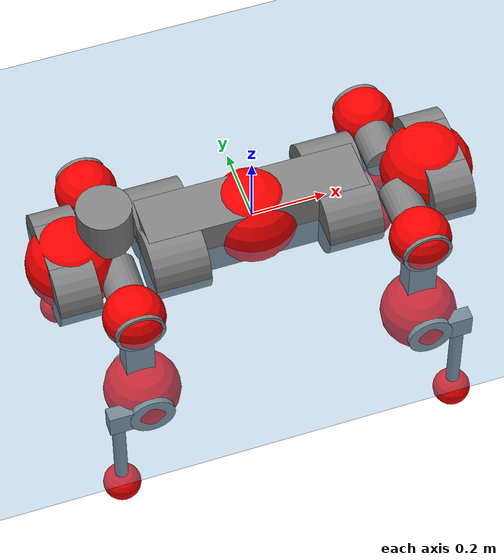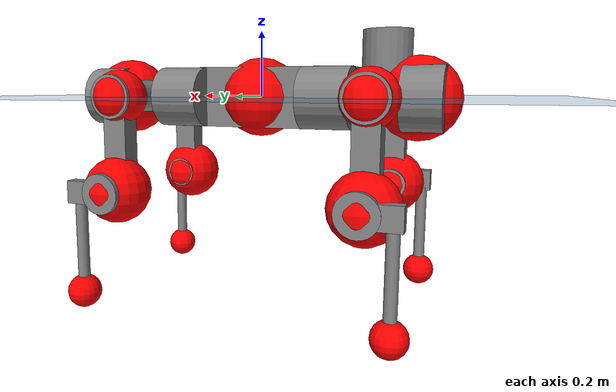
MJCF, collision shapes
<mujoco model="anymal_c">
  <compiler angle="radian" assetdir="assets" balanceinertia="true" inertiafromgeom="false"/>

  <option timestep="0.005" density="1.2" viscosity="2e-05"/>

  <size nkey="1"/>

  <visual>
    <quality shadowsize="8192"/>
    <map shadowclip="0.5"/>
  </visual>

  <default>
    <default class="/">
      <material specular="0" shininess="0.25"/>
      <geom contype="0" conaffinity="0" group="1" solref="-1000 -80"/>
      <site size="0.01 0.005 0.005" group="5"/>
      <general forcelimited="true" forcerange="-80 80" biastype="affine" gainprm="80" biasprm="0 -80 -2"/>
      <default class="anymal_c">
        <joint armature="0.01" damping="0.01" frictionloss="0.1"/>
        <default class="visual">
          <geom type="mesh" group="2"/>
          <default class="visual_zflip"/>
        </default>
        <default class="collision">
          <geom type="cylinder" group="3"/>
          <default class="foot">
            <geom size="0.03 0 0" type="sphere" condim="6" priority="1" friction="0.8 0.02 0.01" solimp="0.015 1 0.03"/>
          </default>
        </default>
      </default>
      <default class="reward_collision_sphere">
        <geom group="5" rgba="1 0 0 1"/>
      </default>
    </default>
  </default>

  <asset>
    <texture type="skybox" colorspace="auto" name="//unnamed_texture_0" builtin="gradient" rgb1="0.95 0.95 0.95" rgb2="0.95 0.95 0.95" width="100" height="600"/>
    <texture type="2d" colorspace="auto" name="texplane" builtin="checker" rgb1="0.345 0.575 0.748" rgb2="0.345 0.575 0.748" markrgb="1 1 1" width="512" height="512"/>
    <texture type="2d" colorspace="linear" name="base" file="base.png"/>
    <texture type="2d" colorspace="linear" name="top_shell" file="top_shell.png"/>
    <texture type="2d" colorspace="linear" name="bottom_shell" file="bottom_shell.png"/>
    <texture type="2d" colorspace="linear" name="remote" file="remote.png"/>
    <texture type="2d" colorspace="linear" name="hatch" file="hatch.png"/>
    <texture type="2d" colorspace="linear" name="handle" file="handle.png"/>
    <texture type="2d" colorspace="linear" name="face" file="face.png"/>
    <texture type="2d" colorspace="linear" name="battery" file="battery.png"/>
    <texture type="2d" colorspace="linear" name="lidar_cage" file="lidar_cage.png"/>
    <texture type="2d" colorspace="linear" name="depth_camera" file="depth_camera.png"/>
    <texture type="2d" colorspace="linear" name="wide_angle_camera" file="wide_angle_camera.png"/>
    <texture type="2d" colorspace="linear" name="lidar" file="lidar.png"/>
    <texture type="2d" colorspace="linear" name="drive" file="drive.png"/>
    <texture type="2d" colorspace="linear" name="hip_l" file="hip_l.png"/>
    <texture type="2d" colorspace="linear" name="shank_l" file="shank_l.png"/>
    <texture type="2d" colorspace="linear" name="foot" file="foot.png"/>
    <texture type="2d" colorspace="linear" name="thigh" file="thigh.png"/>
    <texture type="2d" colorspace="linear" name="shank_r" file="shank_r.png"/>
    <texture type="2d" colorspace="linear" name="hip_r" file="hip_r.png"/>
    <material name="MatPlane" class="/" texture="texplane" texuniform="true" texrepeat="2 2" specular="0.9" shininess="0.5"/>
    <material name="black_plastic" class="/" rgba="0.007 0.007 0.007 1"/>
    <material name="green" class="/" rgba="0.052 0.178 0.033 1"/>
    <material name="red" class="/" rgba="0.178 0.006 0.005 1"/>
    <material name="yellow" class="/" rgba="0.178 0.119 0.006 1"/>
    <material name="lwl" class="/" rgba="0.8 0.8 0.8 1"/>
    <material name="base" class="/" texture="base"/>
    <material name="top_shell" class="/" texture="top_shell"/>
    <material name="bottom_shell" class="/" texture="bottom_shell"/>
    <material name="hip_l" class="/" texture="hip_l"/>
    <material name="thigh" class="/" texture="thigh"/>
    <material name="shank_l" class="/" texture="shank_l"/>
    <material name="foot" class="/" texture="foot"/>
    <material name="hip_r" class="/" texture="hip_r"/>
    <material name="shank" class="/" texture="shank_r"/>
    <material name="hatch" class="/" texture="hatch"/>
    <material name="remote" class="/" texture="remote"/>
    <material name="handle" class="/" texture="handle"/>
    <material name="face" class="/" texture="face"/>
    <material name="depth_camera" class="/" texture="depth_camera"/>
    <material name="wide_angle_camera" class="/" texture="wide_angle_camera"/>
    <material name="battery" class="/" texture="battery"/>
    <material name="lidar_cage" class="/" texture="lidar_cage"/>
    <material name="lidar" class="/" texture="lidar"/>
    <material name="drive" class="/" texture="drive"/>
    <mesh name="base_0" class="/" file="base_0.obj"/>
    <mesh name="base_1" class="/" file="base_1.obj"/>
    <mesh name="base_2" class="/" file="base_2.obj"/>
    <mesh name="base_3" class="/" file="base_3.obj"/>
    <mesh name="base_4" class="/" file="base_4.obj"/>
    <mesh name="base_5" class="/" file="base_5.obj"/>
    <mesh name="top_shell" class="/" file="top_shell.obj"/>
    <mesh name="bottom_shell" class="/" file="bottom_shell.obj"/>
    <mesh name="remote" class="/" file="remote.obj"/>
    <mesh name="handle" class="/" file="handle.obj"/>
    <mesh name="face" class="/" file="face.obj"/>
    <mesh name="wide_angle_camera" class="/" file="wide_angle_camera.obj"/>
    <mesh name="depth_camera" class="/" file="depth_camera.obj"/>
    <mesh name="battery" class="/" file="battery.obj"/>
    <mesh name="lidar_cage" class="/" file="lidar_cage.obj"/>
    <mesh name="lidar" class="/" file="lidar.obj"/>
    <mesh name="drive" class="/" file="drive.obj"/>
    <mesh name="hip_l" class="/" file="hip_l.obj"/>
    <mesh name="thigh" class="/" file="thigh.obj"/>
    <mesh name="shank_l" class="/" file="shank_l.obj"/>
    <mesh name="foot" class="/" file="foot.obj"/>
    <mesh name="hip_r" class="/" file="hip_r.obj"/>
    <mesh name="hatch" class="/" file="hatch.obj"/>
    <mesh name="shank_r" class="/" file="shank_r.obj"/>
  </asset>

  <worldbody>
    <geom name="floor" class="/" size="100 100 0.125" type="plane" group="0" material="MatPlane"/>
    <light name="toplight_shadow" class="/" pos="0 0 5" dir="0.0990148 0.0990148 -0.990148" type="directional" ambient="0.04 0.04 0.04" diffuse="0.55 0.55 0.55" specular="0.12 0.12 0.12"/>
    <light name="toplight_fill" class="/" pos="0 0 5" dir="0.0990148 0.0990148 -0.990148" type="directional" castshadow="false" ambient="0.04 0.04 0.04" diffuse="0.3 0.3 0.3" specular="0.08 0.08 0.08"/>
    <body name="trunk" childclass="anymal_c" pos="-0.000695933 -0.000209131 -0.00265202" quat="0.999999 0.000827857 -0.00102125 0.000373634">
      <inertial pos="0.00278456 0.00241493 0.048571" quat="0.501554 0.507147 0.502477 0.488632" mass="20.3817" diaginertia="0.93357 0.634093 0.222047"/>
      <joint name="//unnamed_joint_0" type="free" armature="0" damping="0" frictionloss="0"/>
      <geom name="//unnamed_geom_1" class="visual" material="green" mesh="base_0"/>
      <geom name="//unnamed_geom_2" class="visual" material="yellow" mesh="base_1"/>
      <geom name="//unnamed_geom_3" class="visual" material="red" mesh="base_2"/>
      <geom name="//unnamed_geom_4" class="visual" material="black_plastic" mesh="base_3"/>
      <geom name="//unnamed_geom_5" class="visual" material="lwl" mesh="base_4"/>
      <geom name="//unnamed_geom_6" class="visual" material="base" mesh="base_5"/>
      <geom name="trunk_1" class="collision" size="0.295947 0.0714356 0.0918458" type="box"/>
      <geom name="trunk_2" class="collision" size="0.0918458 0.0739869" pos="0.232734 0.0696139 0" quat="0.707107 0 0.707107 0"/>
      <geom name="trunk_3" class="collision" size="0.0918458 0.0739869" pos="-0.232734 0.0696139 0" quat="0.707107 0 0.707107 0"/>
      <geom name="trunk_4" class="collision" size="0.0918458 0.0739869" pos="0.232734 -0.0696139 0" quat="0.707107 0 0.707107 0"/>
      <geom name="trunk_5" class="collision" size="0.0918458 0.0739869" pos="-0.232734 -0.0696139 0" quat="0.707107 0 0.707107 0"/>
      <geom name="//unnamed_geom_12" class="visual" material="top_shell" mesh="top_shell"/>
      <geom name="//unnamed_geom_13" class="visual" material="bottom_shell" mesh="bottom_shell"/>
      <geom name="//unnamed_geom_14" class="visual" material="remote" mesh="remote"/>
      <geom name="//unnamed_geom_15" class="visual" material="handle" mesh="handle"/>
      <geom name="//unnamed_geom_16" class="visual" pos="0.443531 0 0" quat="1 0 0 0" material="face" mesh="face"/>
      <geom name="trunk_6" class="collision" size="0.056128 0.0714356 0.0918458" pos="0.502383 0 0" type="box"/>
      <geom name="//unnamed_geom_18" class="collision" size="0.0918458 0.056128" pos="0.502383 0.0696139 0" quat="0.707107 0 0.707107 0"/>
      <geom name="//unnamed_geom_19" class="collision" size="0.0918458 0.056128" pos="0.502383 -0.0696139 0" quat="0.707107 0 0.707107 0"/>
      <geom name="//unnamed_geom_20" class="visual" pos="0.493981 0 -0.0285574" quat="0.965926 0 0.258819 0" material="depth_camera" mesh="depth_camera"/>
      <geom name="//unnamed_geom_21" class="visual" pos="0.54893 0 0.0149251" material="wide_angle_camera" mesh="wide_angle_camera"/>
      <geom name="//unnamed_geom_22" class="visual_zflip" pos="-0.443531 0 0" quat="0 0 0 1" material="face" mesh="face"/>
      <geom name="trunk_7" class="collision" size="0.056128 0.0714356 0.0918458" pos="-0.502383 0 0" quat="0 0 0 1" type="box"/>
      <geom name="//unnamed_geom_24" class="collision" size="0.0918458 0.056128" pos="-0.502383 -0.0696139 0" quat="0 -0.707107 0 0.707107"/>
      <geom name="//unnamed_geom_25" class="collision" size="0.0918458 0.056128" pos="-0.502383 0.0696139 0" quat="0 -0.707107 0 0.707107"/>
      <geom name="//unnamed_geom_26" class="visual" pos="-0.493981 0 -0.0285574" quat="0 -0.258819 0 0.965926" material="depth_camera" mesh="depth_camera"/>
      <geom name="//unnamed_geom_27" class="visual_zflip" pos="-0.54893 0 0.0149251" quat="0 0 0 1" material="wide_angle_camera" mesh="wide_angle_camera"/>
      <geom name="//unnamed_geom_28" class="visual" material="battery" mesh="battery"/>
      <geom name="//unnamed_geom_29" class="visual" pos="0 0.0750438 0.029518" quat="0.683013 -0.183013 0.183013 0.683013" material="depth_camera" mesh="depth_camera"/>
      <geom name="//unnamed_geom_30" class="visual" pos="0 -0.0750438 0.029518" quat="0.683013 0.183013 0.183013 -0.683013" material="depth_camera" mesh="depth_camera"/>
      <geom name="//unnamed_geom_31" class="visual" pos="-0.389494 0 0.0732796" quat="1 0 0 0" material="lidar_cage" mesh="lidar_cage"/>
      <geom name="trunk_8" class="collision" size="0.0714356 0.0612305" pos="-0.389494 0 0.1331"/>
      <geom name="//unnamed_geom_33" class="visual" pos="-0.389494 -2.96836e-05 0.141774" quat="0.707107 0 0 -0.707107" material="lidar" mesh="lidar"/>
      <geom name="//unnamed_geom_34" class="visual" pos="0.320905 0.103427 -4.34266e-11" quat="0.258819 0.965926 0 0" material="drive" mesh="drive"/>
      <geom name="//unnamed_geom_35" class="visual" pos="0.320905 -0.103427 4.34266e-11" quat="0.258819 -0.965926 0 0" material="drive" mesh="drive"/>
      <geom name="//unnamed_geom_36" class="visual" pos="-0.320905 0.103427 4.34266e-11" quat="0 0 0.965926 -0.258819" material="drive" mesh="drive"/>
      <geom name="//unnamed_geom_37" class="visual" pos="-0.320905 -0.103427 -4.34266e-11" quat="0 0 -0.965926 -0.258819" material="drive" mesh="drive"/>
      <geom name="//unnamed_geom_38" class="visual" pos="0.124125 0 0.0727811" quat="1 0 0 0" material="hatch" mesh="hatch"/>
      <geom name="//unnamed_geom_39" class="reward_collision_sphere" size="0.122461"/>
      <geom name="//unnamed_geom_40" class="reward_collision_sphere" size="0.122461" pos="0.481518 0 0"/>
      <geom name="//unnamed_geom_41" class="reward_collision_sphere" size="0.122461" pos="-0.481518 0 0"/>
      <site name="imu" pos="0.260895 0.0155338 0.0338381" size="0.0102051"/>
      <camera name="track" pos="0 -1.98897 0" quat="0.707107 0.707107 0 0" mode="trackcom"/>
      <camera name="ego_camera" pos="0.481518 0 -0.0398801" quat="-0.5 -0.5 0.5 0.5"/>
      <body name="LF_HIP" pos="0.321664 0.103912 0.00214464" quat="0.258763 0.965941 -3.99904e-05 -6.48538e-05">
        <inertial pos="0.0579579 -0.0148486 -0.0107053" quat="-0.117125 0.708106 -0.129295 0.684215" mass="2.89725" diaginertia="0.00830657 0.00474831 0.00319189"/>
        <joint name="LF_HAA" pos="0 0 0" axis="0.999938 0.00992163 0.00497324" range="-0.724067 0.510636" armature="0.0101455" damping="0" frictionloss="0.107467"/>
        <geom name="//unnamed_geom_42" class="visual" pos="0 -2.55459e-06 4.19589e-07" quat="0.258819 -0.965926 0 0" material="hip_l" mesh="hip_l"/>
        <geom name="//unnamed_geom_43" class="visual" pos="0.0640954 -0.0766713 -0.0442848" quat="0.183013 -0.683013 0.683013 0.183013" material="drive" mesh="drive"/>
        <geom name="//unnamed_geom_44" class="collision" size="0.0510254 0.0714356" pos="0.0640954 -0.0118938 -0.0068843" quat="-0.353553 -0.612372 0.612372 -0.353553"/>
        <body name="LF_THIGH" pos="0.0619851 -0.0710133 -0.039497" quat="0.182961 -0.683225 0.682768 0.183184">
          <inertial pos="0.0330434 0.00033374 -0.245303" quat="0.993476 -0.00476958 -0.0780525 0.0830144" mass="3.11237" diaginertia="0.0404501 0.0280675 0.00385602"/>
          <joint name="LF_HFE" pos="0 0 0" axis="0.999999 -0.0013848 -0.00034086" stiffness="0.000950984" range="-3.17168 3.13911" armature="0.00917424" damping="0.0187573" frictionloss="0.102562"/>
          <geom name="//unnamed_geom_45" class="visual" pos="0.00150325 2.36877e-06 0" quat="0.707107 0 0 -0.707107" material="thigh" mesh="thigh"/>
          <geom name="//unnamed_geom_46" class="collision" size="0.066333 0.0408203" pos="0.0428016 0 0" quat="0.5 0.5 -0.5 -0.5"/>
          <geom name="//unnamed_geom_47" class="collision" size="0.0382691 0.0306153 0.144212" pos="0.0321012 0 -0.14089" quat="0.707107 0 0 -0.707107" type="box"/>
          <geom name="//unnamed_geom_48" class="visual" pos="0.107325 0 -0.284145" quat="1 0 0 0" material="drive" mesh="drive"/>
          <geom name="//unnamed_geom_49" class="collision" size="0.0510254 0.0714356" pos="0.0324222 0 -0.284145" quat="0.707107 0 0.707107 0"/>
          <geom name="//unnamed_geom_50" class="reward_collision_sphere" size="0.0816407" pos="0.026751 0 0"/>
          <body name="LF_SHANK" pos="0.10651 0.000212717 -0.285192" quat="1 -2.24876e-05 -5.9389e-05 -3.11827e-05">
            <inertial pos="0.00340039 -0.0636017 -0.0804975" quat="0.992866 -0.116038 -0.000416107 -0.0274427" mass="0.621502" diaginertia="0.013678 0.00888774 0.00109735"/>
            <joint name="LF_KFE" pos="0 0 0" axis="0.999975 -0.00231983 0.0066857" range="-3.18966 3.16735" armature="0.0106051" damping="0.014424" frictionloss="0.115259"/>
            <geom name="//unnamed_geom_51" class="visual" pos="0.000490177 0.00261365 0" quat="0.707107 0 0 -0.707107" material="shank_l" mesh="shank_l"/>
            <geom name="LF_kfe_act" class="collision" size="0.0612305 0.0204102" pos="0.0214008 0 0" quat="0.5 0.5 -0.5 -0.5"/>
            <geom name="//unnamed_geom_53" class="collision" size="0.0586782 0.0344422 0.0193897" pos="0.0214008 -0.0571819 0" quat="0.5 0.5 -0.5 -0.5" type="box"/>
            <geom name="//unnamed_geom_54" class="visual" pos="0.0139639 -0.0866226 -0.336957" quat="0.382683 0 0 -0.92388" material="foot" mesh="foot"/>
            <geom name="LF_calf" class="collision" size="0.0178589 0.144149" pos="0.013964 -0.0874649 -0.168478" quat="0.707107 0 0 -0.707107"/>
            <geom name="LF_foot" class="foot" size="0.0302517" pos="0.013964 -0.0874649 -0.314524" quat="0.707107 0 0 -0.707107"/>
            <geom name="//unnamed_geom_57" class="reward_collision_sphere" size="0.102051" pos="-0.053502 0 0"/>
            <geom name="//unnamed_geom_58" class="reward_collision_sphere" size="0.0510254" pos="0.013964 -0.0874649 -0.314524"/>
            <site name="LF_foot" class="foot" pos="0.013964 -0.0874649 -0.314524" quat="0.707107 0 0 -0.707107" size="0.0102051"/>
          </body>
        </body>
      </body>
      <body name="RF_HIP" pos="0.320476 -0.103432 0.00167243" quat="0.258288 -0.966068 -0.000903155 -0.000448852">
        <inertial pos="0.0607883 0.0156237 -0.00808454" quat="0.123933 0.679536 0.134573 0.710466" mass="3.07582" diaginertia="0.00817601 0.00479268 0.00323292"/>
        <joint name="RF_HAA" pos="0 0 0" axis="0.999993 0.00144029 -0.00336658" range="-0.546511 0.702417" armature="0.00976468" damping="0.00273782" frictionloss="0.111406"/>
        <geom name="//unnamed_geom_59" class="visual" pos="0 2.55457e-06 4.19588e-07" quat="0.258819 0.965926 0 0" material="hip_r" mesh="hip_r"/>
        <geom name="//unnamed_geom_60" class="visual" pos="0.0640954 0.0766713 -0.0442848" quat="0.183013 0.683013 0.683013 -0.183013" material="drive" mesh="drive"/>
        <geom name="//unnamed_geom_61" class="collision" size="0.0510254 0.0714356" pos="0.0640954 0.0118938 -0.0068843" quat="-0.353553 0.612372 0.612372 0.353553"/>
        <body name="RF_THIGH" pos="0.0648971 0.0702991 -0.0419602" quat="0.183096 0.683023 0.682955 -0.183107">
          <inertial pos="0.0324316 5.71661e-05 -0.244052" quat="0.992552 -0.0047406 -0.0845525 0.0875773" mass="3.35468" diaginertia="0.0426173 0.0280879 0.00413293"/>
          <joint name="RF_HFE" pos="0 0 0" axis="0.999999 6.20411e-05 0.00121826" stiffness="0.0149864" range="-3.13797 3.11088" armature="0.0100012" damping="0" frictionloss="0.0893278"/>
          <geom name="//unnamed_geom_62" class="visual" pos="0.00150325 2.36877e-06 0" quat="0.707107 0 0 -0.707107" material="thigh" mesh="thigh"/>
          <geom name="//unnamed_geom_63" class="collision" size="0.066333 0.0408203" pos="0.0428016 0 0" quat="0.5 0.5 0.5 0.5"/>
          <geom name="//unnamed_geom_64" class="collision" size="0.0382691 0.0306153 0.144212" pos="0.0321012 0 -0.14089" quat="0.707107 0 0 0.707107" type="box"/>
          <geom name="//unnamed_geom_65" class="visual" pos="0.107325 0 -0.284145" quat="1 0 0 0" material="drive" mesh="drive"/>
          <geom name="//unnamed_geom_66" class="collision" size="0.0510254 0.0714356" pos="0.0324222 0 -0.284145" quat="0.707107 0 0.707107 0"/>
          <geom name="//unnamed_geom_67" class="reward_collision_sphere" size="0.0816407" pos="0.026751 0 0"/>
          <body name="RF_SHANK" pos="0.104252 -0.000683473 -0.284711" quat="1 -0.00051275 0.000136416 -0.000236658">
            <inertial pos="0.00701025 0.0582163 -0.0776541" quat="0.993114 0.112855 0.0104953 0.0296316" mass="0.61123" diaginertia="0.0137335 0.00897247 0.00104147"/>
            <joint name="RF_KFE" pos="0 0 0" axis="0.999999 -0.00119348 -0.000475849" range="-3.1311 3.15137" armature="0.0101725" damping="0" frictionloss="0.0979845"/>
            <geom name="//unnamed_geom_68" class="visual" pos="0.000490174 -0.00261364 0" quat="0.707107 0 0 0.707107" material="shank" mesh="shank_r"/>
            <geom name="RF_kfe_act" class="collision" size="0.0612305 0.0204102" pos="0.0214008 0 0" quat="0.5 0.5 0.5 0.5"/>
            <geom name="//unnamed_geom_70" class="collision" size="0.0586782 0.0344422 0.0193897" pos="0.0214008 0.0571819 0" quat="0.5 0.5 0.5 0.5" type="box"/>
            <geom name="//unnamed_geom_71" class="visual" pos="0.0139641 0.0866226 -0.336957" quat="0.382683 0 0 0.92388" material="foot" mesh="foot"/>
            <geom name="RF_calf" class="collision" size="0.0178589 0.144149" pos="0.013964 0.0874649 -0.168478" quat="0.707107 0 0 0.707107"/>
            <geom name="RF_foot" class="foot" size="0.028196" pos="0.013964 0.0874649 -0.314524" quat="0.707107 0 0 0.707107"/>
            <geom name="//unnamed_geom_74" class="reward_collision_sphere" size="0.102051" pos="-0.053502 0 0"/>
            <geom name="//unnamed_geom_75" class="reward_collision_sphere" size="0.0510254" pos="0.013964 0.0874649 -0.314524"/>
            <site name="RF_foot" class="foot" pos="0.013964 0.0874649 -0.314524" quat="0.707107 0 0 0.707107" size="0.0102051"/>
          </body>
        </body>
      </body>
      <body name="LH_HIP" pos="-0.32016 0.101928 0.00289287" quat="0.000301733 -0.000118294 0.965931 -0.258799">
        <inertial pos="0.0614712 0.0122578 -0.0109831" quat="0.135296 0.679066 0.127992 0.710058" mass="2.92043" diaginertia="0.0079981 0.0047055 0.0030874"/>
        <joint name="LH_HAA" pos="0 0 0" axis="0.999891 0.00843852 0.0121524" range="-0.548208 0.777052" armature="0.011542" damping="0.0119025" frictionloss="0.103593"/>
        <geom name="//unnamed_geom_76" class="visual" pos="0 2.55457e-06 4.19588e-07" quat="-0.258819 -0.965926 0 0" material="hip_r" mesh="hip_r"/>
        <geom name="//unnamed_geom_77" class="visual" pos="0.0640954 0.0766713 -0.0442848" quat="0.183013 0.683013 0.683013 -0.183013" material="drive" mesh="drive"/>
        <geom name="//unnamed_geom_78" class="collision" size="0.0510254 0.0714356" pos="0.0640954 0.0118938 -0.0068843" quat="-0.353553 0.612372 0.612372 0.353553"/>
        <body name="LH_THIGH" pos="0.063204 0.0697616 -0.0404239" quat="0.183109 0.682088 0.683749 -0.183616">
          <inertial pos="0.0355547 -0.00244196 -0.247288" quat="0.992757 -0.00469499 -0.0808687 0.0887252" mass="3.34472" diaginertia="0.0452038 0.02963 0.00435529"/>
          <joint name="LH_HFE" pos="0 0 0" axis="0.999903 -0.0139311 0.000480061" range="-3.18019 3.1482" armature="0.0106013" damping="0" frictionloss="0.104633"/>
          <geom name="//unnamed_geom_79" class="visual" pos="0.00150325 2.36877e-06 0" quat="0.707107 0 0 -0.707107" material="thigh" mesh="thigh"/>
          <geom name="//unnamed_geom_80" class="collision" size="0.066333 0.0408203" pos="0.0428016 0 0" quat="0.5 0.5 -0.5 -0.5"/>
          <geom name="//unnamed_geom_81" class="collision" size="0.0382691 0.0306153 0.144212" pos="0.0321012 0 -0.14089" quat="0.707107 0 0 -0.707107" type="box"/>
          <geom name="//unnamed_geom_82" class="visual" pos="0.107325 0 -0.284145" quat="1 0 0 0" material="drive" mesh="drive"/>
          <geom name="//unnamed_geom_83" class="collision" size="0.0510254 0.0714356" pos="0.0324222 0 -0.284145" quat="0.707107 0 0.707107 0"/>
          <geom name="//unnamed_geom_84" class="reward_collision_sphere" size="0.0816407" pos="0.026751 0 0"/>
          <body name="LH_SHANK" pos="0.10598 -2.21384e-05 -0.286221" quat="0.999999 -0.000928448 0.000984255 -0.00028932">
            <inertial pos="0.00318085 0.0626945 -0.0829246" quat="0.993906 0.107089 -0.011286 0.0235684" mass="0.611189" diaginertia="0.0138596 0.00863551 0.00107647"/>
            <joint name="LH_KFE" pos="0 0 0" axis="0.999949 -0.00979526 -0.00243437" stiffness="0.00204996" range="-3.16051 3.09143" armature="0.01165" damping="0" frictionloss="0.103671"/>
            <geom name="//unnamed_geom_85" class="visual" pos="0.000490174 -0.00261364 0" quat="-0.707107 0 0 -0.707107" material="shank" mesh="shank_r"/>
            <geom name="LH_kfe_act" class="collision" size="0.0612305 0.0204102" pos="0.0214008 0 0" quat="0.5 0.5 -0.5 -0.5"/>
            <geom name="//unnamed_geom_87" class="collision" size="0.0586782 0.0344422 0.0193897" pos="0.0214008 0.0571819 0" quat="0.5 0.5 -0.5 -0.5" type="box"/>
            <geom name="//unnamed_geom_88" class="visual" pos="0.0139641 0.0866226 -0.336957" quat="-0.382683 0 0 -0.92388" material="foot" mesh="foot"/>
            <geom name="LH_calf" class="collision" size="0.0178589 0.144149" pos="0.013964 0.0874649 -0.168478" quat="0.707107 0 0 -0.707107"/>
            <geom name="LH_foot" class="foot" size="0.0318944" pos="0.013964 0.0874649 -0.314524" quat="0.707107 0 0 -0.707107"/>
            <geom name="//unnamed_geom_91" class="reward_collision_sphere" size="0.102051" pos="-0.053502 0 0"/>
            <geom name="//unnamed_geom_92" class="reward_collision_sphere" size="0.0510254" pos="0.013964 0.0874649 -0.314524"/>
            <site name="LH_foot" class="foot" pos="0.013964 0.0874649 -0.314524" quat="0.707107 0 0 -0.707107" size="0.0102051"/>
          </body>
        </body>
      </body>
      <body name="RH_HIP" pos="-0.318313 -0.104071 0.003147" quat="2.89205e-05 -0.000123439 -0.965936 -0.258782">
        <inertial pos="0.0580821 -0.0168614 -0.00835696" quat="-0.124361 0.711738 -0.147709 0.675386" mass="2.9611" diaginertia="0.00877708 0.00497505 0.00339457"/>
        <joint name="RH_HAA" pos="0 0 0" axis="0.999919 -0.0061633 -0.0111663" stiffness="0.00141287" range="-0.738288 0.495237" armature="0.0101726" damping="0.0101949" frictionloss="0.114835"/>
        <geom name="//unnamed_geom_93" class="visual" pos="0 -2.55459e-06 4.19589e-07" quat="-0.258819 0.965926 0 0" material="hip_l" mesh="hip_l"/>
        <geom name="//unnamed_geom_94" class="visual" pos="0.0640954 -0.0766713 -0.0442848" quat="-0.183013 0.683013 -0.683013 -0.183013" material="drive" mesh="drive"/>
        <geom name="//unnamed_geom_95" class="collision" size="0.0510254 0.0714356" pos="0.0640954 -0.0118938 -0.0068843" quat="0.353553 0.612372 -0.612372 0.353553"/>
        <body name="RH_THIGH" pos="0.0643762 -0.0719905 -0.0434742" quat="-0.182947 0.682951 -0.682945 -0.183562">
          <inertial pos="0.0335451 -0.00117013 -0.247504" quat="0.99399 -0.00420086 -0.0798866 0.0747291" mass="3.18381" diaginertia="0.0441975 0.0292504 0.00410101"/>
          <joint name="RH_HFE" pos="0 0 0" axis="0.999996 0.00244716 0.0013668" range="-3.13186 3.09638" armature="0.0100316" damping="0.00590413" frictionloss="0.106715"/>
          <geom name="//unnamed_geom_96" class="visual" pos="0.00150325 2.36877e-06 0" quat="0.707107 0 0 -0.707107" material="thigh" mesh="thigh"/>
          <geom name="//unnamed_geom_97" class="collision" size="0.066333 0.0408203" pos="0.0428016 0 0" quat="0.5 0.5 0.5 0.5"/>
          <geom name="//unnamed_geom_98" class="collision" size="0.0382691 0.0306153 0.144212" pos="0.0321012 0 -0.14089" quat="0.707107 0 0 0.707107" type="box"/>
          <geom name="//unnamed_geom_99" class="visual" pos="0.107325 0 -0.284145" quat="1 0 0 0" material="drive" mesh="drive"/>
          <geom name="//unnamed_geom_100" class="collision" size="0.0510254 0.0714356" pos="0.0324222 0 -0.284145" quat="0.707107 0 0.707107 0"/>
          <geom name="//unnamed_geom_101" class="reward_collision_sphere" size="0.0816407" pos="0.026751 0 0"/>
          <body name="RH_SHANK" pos="0.104707 0.00280584 -0.286252" quat="0.999999 -0.00051176 0.00096756 -0.000534653">
            <inertial pos="0.00547795 -0.0611237 -0.0804841" quat="0.992303 -0.117791 0.00395328 -0.0380175" mass="0.646343" diaginertia="0.0147188 0.00928736 0.00108614"/>
            <joint name="RH_KFE" pos="0 0 0" axis="0.999904 -0.00274467 0.0135545" range="-3.07212 3.15474" armature="0.0101998" damping="0" frictionloss="0.106395"/>
            <geom name="//unnamed_geom_102" class="visual" pos="0.000490177 0.00261365 0" quat="0.707107 0 0 -0.707107" material="shank_l" mesh="shank_l"/>
            <geom name="RH_kfe_act" class="collision" size="0.0612305 0.0204102" pos="0.0214008 0 0" quat="0.5 0.5 0.5 0.5"/>
            <geom name="//unnamed_geom_104" class="collision" size="0.0586782 0.0344422 0.0193897" pos="0.0214008 -0.0571819 0" quat="0.5 0.5 0.5 0.5" type="box"/>
            <geom name="//unnamed_geom_105" class="visual" pos="0.0139639 -0.0866226 -0.336957" quat="0.382683 0 0 -0.92388" material="foot" mesh="foot"/>
            <geom name="RH_calf" class="collision" size="0.0178589 0.144149" pos="0.013964 -0.0874649 -0.168478" quat="0.707107 0 0 0.707107"/>
            <geom name="RH_foot" class="foot" size="0.0294425" pos="0.013964 -0.0874649 -0.314524" quat="0.707107 0 0 0.707107"/>
            <geom name="//unnamed_geom_108" class="reward_collision_sphere" size="0.102051" pos="-0.053502 0 0"/>
            <geom name="//unnamed_geom_109" class="reward_collision_sphere" size="0.0510254" pos="0.013964 -0.0874649 -0.314524"/>
            <site name="RH_foot" class="foot" pos="0.013964 -0.0874649 -0.314524" quat="0.707107 0 0 0.707107" size="0.0102051"/>
          </body>
        </body>
      </body>
    </body>
  </worldbody>

  <contact>
    <pair class="/" geom1="floor" geom2="LF_foot" name="//unnamed_contact_0"/>
    <pair class="/" geom1="floor" geom2="RF_foot" name="//unnamed_contact_1"/>
    <pair class="/" geom1="floor" geom2="LH_foot" name="//unnamed_contact_2"/>
    <pair class="/" geom1="floor" geom2="RH_foot" name="//unnamed_contact_3"/>
  </contact>

  <actuator>
    <general name="LF_HAA" class="/" joint="LF_HAA" forcerange="-82.1608 82.1608" gainprm="81.843" biasprm="0 -81.843 -1.87358"/>
    <general name="LF_HFE" class="/" joint="LF_HFE" forcerange="-78.1224 78.1224" gainprm="81.843" biasprm="0 -81.843 -1.87358"/>
    <general name="LF_KFE" class="/" joint="LF_KFE" forcerange="-86.4151 86.4151" gainprm="81.843" biasprm="0 -81.843 -1.87358"/>
    <general name="RF_HAA" class="/" joint="RF_HAA" forcerange="-85.1313 85.1313" gainprm="81.843" biasprm="0 -81.843 -1.87358"/>
    <general name="RF_HFE" class="/" joint="RF_HFE" forcerange="-87.7569 87.7569" gainprm="81.843" biasprm="0 -81.843 -1.87358"/>
    <general name="RF_KFE" class="/" joint="RF_KFE" forcerange="-81.3064 81.3064" gainprm="81.843" biasprm="0 -81.843 -1.87358"/>
    <general name="LH_HAA" class="/" joint="LH_HAA" forcerange="-81.2907 81.2907" gainprm="81.843" biasprm="0 -81.843 -1.87358"/>
    <general name="LH_HFE" class="/" joint="LH_HFE" forcerange="-73.7845 73.7845" gainprm="81.843" biasprm="0 -81.843 -1.87358"/>
    <general name="LH_KFE" class="/" joint="LH_KFE" forcerange="-90.6965 90.6965" gainprm="81.843" biasprm="0 -81.843 -1.87358"/>
    <general name="RH_HAA" class="/" joint="RH_HAA" forcerange="-81.9358 81.9358" gainprm="81.843" biasprm="0 -81.843 -1.87358"/>
    <general name="RH_HFE" class="/" joint="RH_HFE" forcerange="-82.9613 82.9613" gainprm="81.843" biasprm="0 -81.843 -1.87358"/>
    <general name="RH_KFE" class="/" joint="RH_KFE" forcerange="-86.6455 86.6455" gainprm="81.843" biasprm="0 -81.843 -1.87358"/>
  </actuator>

  <sensor>
    <gyro site="imu" name="imu_angular_velocity"/>
    <velocimeter site="imu" name="imu_linear_velocity"/>
    <framelinvel objtype="site" objname="LF_foot" name="LF_foot_global_linear_velocity"/>
    <framelinvel objtype="site" objname="RF_foot" name="RF_foot_global_linear_velocity"/>
    <framelinvel objtype="site" objname="LH_foot" name="LH_foot_global_linear_velocity"/>
    <framelinvel objtype="site" objname="RH_foot" name="RH_foot_global_linear_velocity"/>
  </sensor>

  <keyframe>
    <key name="home" qpos="0 0 0.55 1 0 0 0 0 0.4 -0.8 0 -0.4 0.8 0 -0.4 0.8 0 0.4 -0.8"/>
  </keyframe>
</mujoco>
